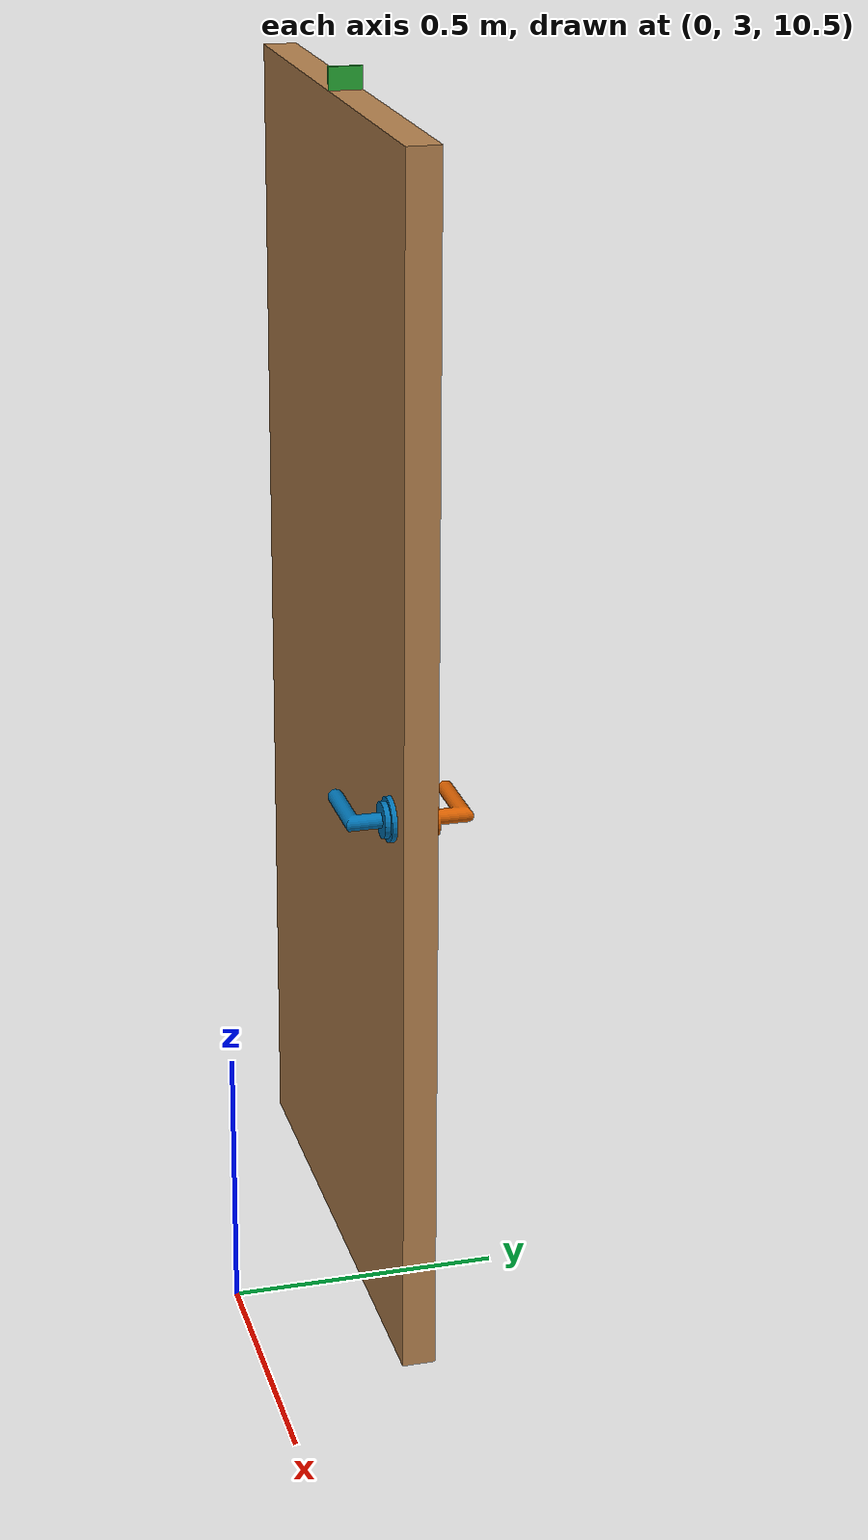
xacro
<?xml version="1.0" ?>
<robot name="${room_name}_door" xmlns:xacro="http://ros.org/wiki/xacro" xmlns:xi="http://www.w3.org/2001/XInclude" xmlns:gazebo="http://playerstage.sourceforge.net/gazebo/xmlschema/#gz" xmlns:model="http://playerstage.sourceforge.net/gazebo/xmlschema/#model" xmlns:sensor="http://playerstage.sourceforge.net/gazebo/xmlschema/#sensor" xmlns:body="http://playerstage.sourceforge.net/gazebo/xmlschema/#body" xmlns:geom="http://playerstage.sourceforge.net/gazebo/xmlschema/#geom" xmlns:joint="http://playerstage.sourceforge.net/gazebo/xmlschema/#joint" xmlns:interface="http://playerstage.sourceforge.net/gazebo/xmlschema/#interface" xmlns:rendering="http://playerstage.sourceforge.net/gazebo/xmlschema/#rendering" xmlns:renderable="http://playerstage.sourceforge.net/gazebo/xmlschema/#renderable" xmlns:controller="http://playerstage.sourceforge.net/gazebo/xmlschema/#controller" xmlns:physics="http://playerstage.sourceforge.net/gazebo/xmlschema/#physics">
    <property name="room_name" value="entrance_f1" />
    <property name="x_position" value="4.4" />
    <property name="y_position" value="8.25" />
    <property name="z_position" value="10.56" />
    <property name="x_world_offset" value="-5" />
    <property name="y_world_offset" value="-5" />
    <property name="lower_limit" value="-1.57" />
    <property name="orientation" value="0" />
    <joint name="${room_name}_door_joint" type="revolute">
        <axis xyz="0 0 1" />
        <parent link="world" />
        <child link="${room_name}_door_block" />
        <origin rpy="0 0 ${orientation}" xyz="${x_position + x_world_offset} ${y_position + y_world_offset} ${z_position}" />
        <limit effort="100.0" lower="${lower_limit}" upper="0.001" velocity="5" />
    </joint>
    <joint name="doorblock_door" type="fixed">
        <axis xyz="0 0 1" />
        <parent link="${room_name}_door_block" />
        <child link="${room_name}_door" />
        <origin rpy="0 0 0" xyz="0 0 0" />
    </joint>
    <joint name="door_strip" type="fixed">
        <axis xyz="0 0 1" />
        <parent link="${room_name}_door" />
        <child link="optical_switch_strip" />
        <origin rpy="0 0 0" xyz="0.5 0 2.19" />
    </joint>
    <joint name="door_doorhandelfront" type="fixed">
        <axis xyz="0 1 0" />
        <parent link="${room_name}_door" />
        <child link="door_handel_front" />
        <origin rpy="3.14 3.14 0" xyz="1.0 -0.002 1" />
    </joint>
    <joint name="door_doorhandelback" type="fixed">
        <axis xyz="0 1 0" />
        <parent link="${room_name}_door" />
        <child link="door_handel_back" />
        <origin rpy="0 3.14 0" xyz="1.0 -0.04 1.075" />
    </joint>
    <link name="world" />
    <link name="${room_name}_door_block">
        <inertial>
            <mass value="1" />
            <origin xyz="0 0 0" />
            <inertia ixx="1.0" ixy="0.0" ixz="0.0" iyy="1" iyz="0.0" izz="3" />
        </inertial>
        <visual>
            <origin rpy="0 0 0" xyz="0 0 0" />
            <geometry>
                <box size="0 0 0" />
            </geometry>
        </visual>
        <collision>
            <origin rpy="0 0 0" xyz="0 0 0" />
            <geometry>
                <box size="0 0 0" />
            </geometry>
        </collision>
    </link>
    <gazebo reference="${room_name}_door_block">
        <material>angen_gazebo/DoorWood</material>
        <laserRetro>2000</laserRetro>
        <dampingFactor>0.006</dampingFactor>
        <selfCollide>false</selfCollide>
        <turnGravityOff>true</turnGravityOff>
    </gazebo>
    <link name="${room_name}_door">
        <inertial>
            <mass value="20" />
            <origin xyz="0 0 0" />
            <inertia ixx="1.0" ixy="0.0" ixz="0.0" iyy="1" iyz="0.0" izz="3" />
        </inertial>
        <visual>
            <origin rpy="0 0 0" xyz="0.5 0 1.095" />
            <geometry>
                <box size="1 0.06 2.19" />
            </geometry>
        </visual>
        <collision>
            <origin rpy="0 0 0" xyz="0.5 0 1.095" />
            <geometry>
                <box size="1 0.06 2.19" />
            </geometry>
        </collision>
    </link>
    <gazebo reference="${room_name}_door">
        <material>angen_gazebo/DoorWood</material>
        <laserRetro>2000</laserRetro>
        <dampingFactor>0.006</dampingFactor>
        <selfCollide>false</selfCollide>
        <turnGravityOff>true</turnGravityOff>
    </gazebo>
    <link name="optical_switch_strip">
        <inertial>
            <mass value="0.0001" />
            <origin xyz="0 0 0" />
            <inertia ixx="1.0" ixy="0.0" ixz="0.0" iyy="1" iyz="0.0" izz="3" />
        </inertial>
        <visual>
            <origin rpy="0 0 0" xyz="0 0 0.02" />
            <geometry>
                <box size="0.005 0.06 0.04" />
            </geometry>
        </visual>
        <collision>
            <origin rpy="0 0 0" xyz="0 0 0.02" />
            <geometry>
                <box size="0.005 0.06 0.04" />
            </geometry>
        </collision>
    </link>
    <gazebo reference="optical_switch_strip">
        <material>Gazebo/Green</material>
        <laserRetro>2000</laserRetro>
        <dampingFactor>0.006</dampingFactor>
        <selfCollide>false</selfCollide>
        <turnGravityOff>true</turnGravityOff>
    </gazebo>
    <link name="door_handel_front">
        <inertial>
            <mass value=".25" />
            <origin xyz="0 0 0" />
            <inertia ixx="1.0" ixy="0.0" ixz="0.0" iyy="1" iyz="0.0" izz="3" />
        </inertial>
        <visual>
            <origin rpy="0 0 0" xyz="0 -0.02 0" />
            <geometry>
                <mesh filename="door_handel.stl" size="0.16 0.04 0.1" />
            </geometry>
        </visual>
        <collision>
            <origin rpy="0 0 0" xyz="0 -0.02 0" />
            <geometry>
                <mesh filename="door_handel.stl" size="0.16 0.04 0.1" />
            </geometry>
        </collision>
    </link>
    <gazebo reference="door_handel_front">
        <material>angen_gazebo/DoorMetal</material>
        <laserRetro>2000</laserRetro>
        <dampingFactor>0.006</dampingFactor>
        <selfCollide>false</selfCollide>
        <turnGravityOff>true</turnGravityOff>
    </gazebo>
    <link name="door_handel_back">
        <inertial>
            <mass value=".25" />
            <origin xyz="0 0 0" />
            <inertia ixx="1.0" ixy="0.0" ixz="0.0" iyy="1" iyz="0.0" izz="3" />
        </inertial>
        <visual>
            <origin rpy="0 0 0" xyz="0 0.02 0" />
            <geometry>
                <mesh filename="door_handel.stl" size="0.16 0.04 0.1" />
            </geometry>
        </visual>
        <collision>
            <origin rpy="0 0 0" xyz="0 0.02 0" />
            <geometry>
                <mesh filename="door_handel.stl" size="0.16 0.04 0.1" />
            </geometry>
        </collision>
    </link>
    <gazebo reference="door_handel_back">
        <material>angen_gazebo/DoorMetal</material>
        <laserRetro>2000</laserRetro>
        <dampingFactor>0.006</dampingFactor>
        <selfCollide>false</selfCollide>
        <turnGravityOff>true</turnGravityOff>
    </gazebo>
    <gazebo>
        <controller:gazebo_ros_p3d name="p3d_door_controller" plugin="libgazebo_ros_p3d.so">
            <alwaysOn>true</alwaysOn>
            <updateRate>100.0</updateRate>
            <bodyName>${room_name}_door_block</bodyName>
            <topicName>${room_name}_door_pose</topicName>
            <serviceName>${room_name}_door_pose_service</serviceName>
            <frameName>map</frameName>
            <robotNamespace>door</robotNamespace>
            <interface:position name="p3d_door_position" />
        </controller:gazebo_ros_p3d>
        <transmission type="pr2_mechanism_model/SimpleTransmission" name="${room_name}_door_trans">
            <actuator name="${room_name}_door_motor" />
            <joint name="${room_name}_door_joint" />
            <mechanicalReduction>1</mechanicalReduction>
            <motorTorqueConstant>1</motorTorqueConstant>
        </transmission>
    </gazebo>
</robot>
